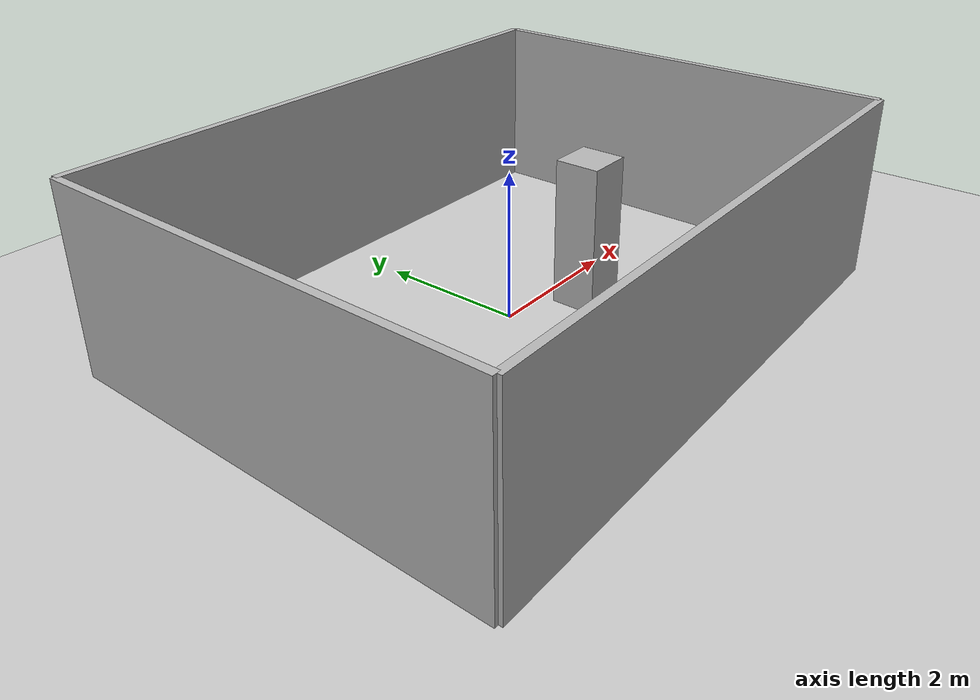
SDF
<?xml version="1.0" ?>
<sdf version="1.6">
  <world name="room">
    <include><uri>model://sun</uri></include>
    <include><uri>model://ground_plane</uri></include>
    <model name="room_walls"><static>true</static><link name="walls">
      <collision name="c_n"><pose>0 3 1.25 0 0 0</pose><geometry><box><size>8 0.1 2.5</size></box></geometry></collision>
      <visual    name="v_n"><pose>0 3 1.25 0 0 0</pose><geometry><box><size>8 0.1 2.5</size></box></geometry></visual>
      <collision name="c_s"><pose>0 -3 1.25 0 0 0</pose><geometry><box><size>8 0.1 2.5</size></box></geometry></collision>
      <visual    name="v_s"><pose>0 -3 1.25 0 0 0</pose><geometry><box><size>8 0.1 2.5</size></box></geometry></visual>
      <collision name="c_e"><pose>4 0 1.25 0 0 0</pose><geometry><box><size>0.1 6 2.5</size></box></geometry></collision>
      <visual    name="v_e"><pose>4 0 1.25 0 0 0</pose><geometry><box><size>0.1 6 2.5</size></box></geometry></visual>
      <collision name="c_w"><pose>-4 0 1.25 0 0 0</pose><geometry><box><size>0.1 6 2.5</size></box></geometry></collision>
      <visual    name="v_w"><pose>-4 0 1.25 0 0 0</pose><geometry><box><size>0.1 6 2.5</size></box></geometry></visual>
      <collision name="c_p"><pose>1 -0.5 1.0 0 0 0</pose><geometry><box><size>0.6 0.6 2.0</size></box></geometry></collision>
      <visual    name="v_p"><pose>1 -0.5 1.0 0 0 0</pose><geometry><box><size>0.6 0.6 2.0</size></box></geometry></visual>
    </link></model>
  </world>
</sdf>
